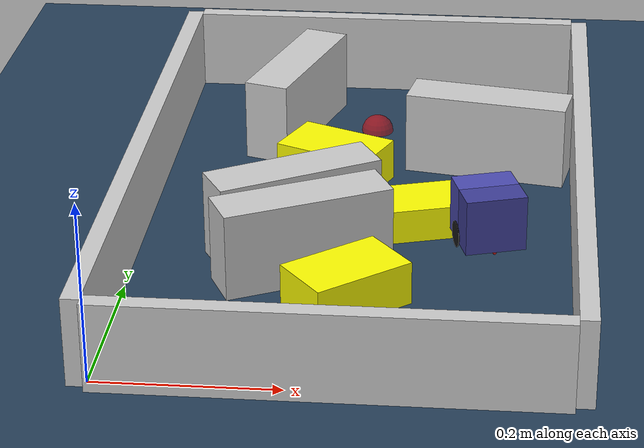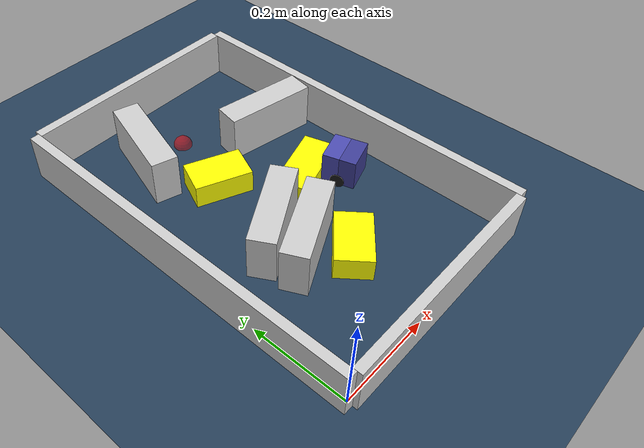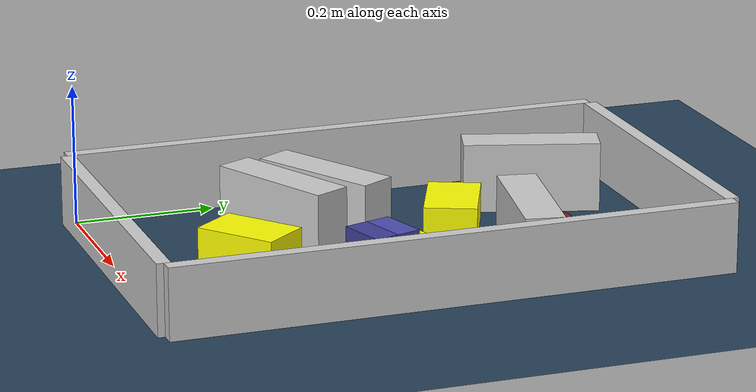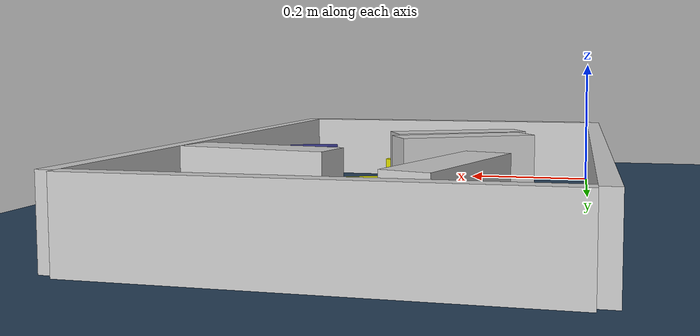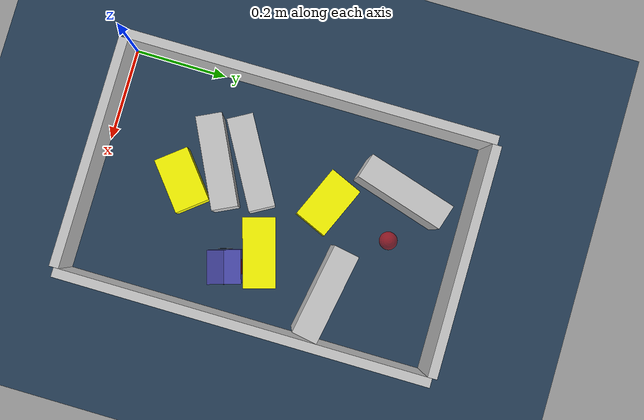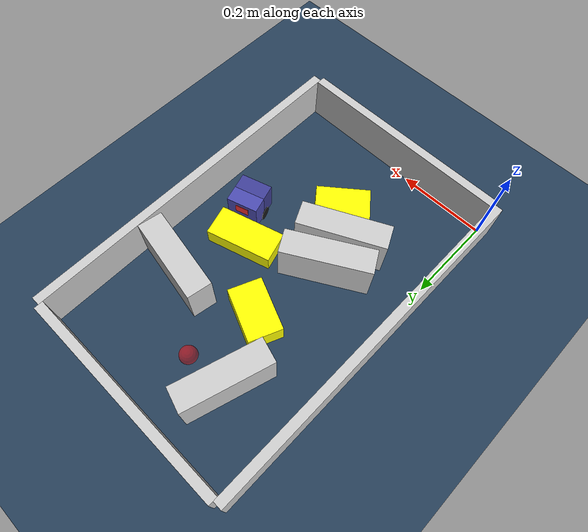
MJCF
<?xml version='1.0' encoding='utf-8'?>
<mujoco model="real_buildable">
  <compiler angle="degree" />
  <option timestep="0.002" integrator="implicitfast" iterations="100" cone="elliptic" />
  <default>
    <geom density="1" />
  </default>
  <asset>
    <texture builtin="gradient" height="3072" rgb1="0.3 0.5 0.7" rgb2="0 0 0" type="skybox" width="512" />
    <texture builtin="checker" height="300" mark="edge" markrgb="0.8 0.8 0.8" name="groundplane" rgb1="0.2 0.3 0.4" rgb2="0.1 0.2 0.3" type="2d" width="300" />
    <material name="groundplane" reflectance="0.2" texrepeat="5 5" texture="groundplane" texuniform="true" />
  </asset>
  <worldbody>
    <light dir="0 0 -1" directional="true" pos="0 0 1.5" />
    <geom name="floor" type="plane" condim="4" friction="0.5 0.005 0.001" material="groundplane" size="0 0 0.05" />
    <body name="walls">
      <geom name="wall_boundary_left" type="box" condim="4" friction="1.0 0.005 0.0001" rgba="0.8 0.8 0.8 1" pos="-0.010000 0.387500 0.050000" euler="0 0 0.000000" size="0.010000 0.397500 0.050000" />
      <geom name="wall_boundary_right" type="box" condim="4" friction="1.0 0.005 0.0001" rgba="0.8 0.8 0.8 1" pos="0.500000 0.387500 0.050000" euler="0 0 0.000000" size="0.010000 0.397500 0.050000" />
      <geom name="wall_boundary_bottom" type="box" condim="4" friction="1.0 0.005 0.0001" rgba="0.8 0.8 0.8 1" pos="0.245000 -0.010000 0.050000" euler="0 0 0.000000" size="0.245000 0.010000 0.050000" />
      <geom name="wall_boundary_top" type="box" condim="4" friction="1.0 0.005 0.0001" rgba="0.8 0.8 0.8 1" pos="0.245000 0.785000 0.050000" euler="0 0 0.000000" size="0.245000 0.010000 0.050000" />
      <geom name="wall_inner_1" type="box" condim="4" friction="1.0 0.005 0.0001" rgba="0.8 0.8 0.8 1" pos="0.173731 0.312636 0.050000" euler="0 0 29.699856" size="0.097500 0.027500 0.050000" />
      <geom name="wall_inner_2" type="box" condim="4" friction="1.0 0.005 0.0001" rgba="0.8 0.8 0.8 1" pos="0.191252 0.245062 0.050000" euler="0 0 26.107387" size="0.097500 0.027500 0.050000" />
      <geom name="wall_inner_3" type="box" condim="4" friction="1.0 0.005 0.0001" rgba="0.8 0.8 0.8 1" pos="0.389000 0.533000 0.050000" euler="0 0 169.800000" size="0.097500 0.027500 0.050000" />
      <geom name="wall_inner_4" type="box" condim="4" friction="1.0 0.005 0.0001" rgba="0.8 0.8 0.8 1" pos="0.143000 0.632000 0.050000" euler="0 0 73.000000" size="0.097500 0.027500 0.050000" />
    </body>
    <body name="car" pos="0.39443024111427882 0.31882349425159318 0.01" quat="0.59446112914259841 0 0 0.80412434731110272">
      <freejoint name="car_freejoint" />
      <inertial pos="0 0 0.0375" mass="0.35" diaginertia="0.000266 0.000266 0.000286" />
      <geom name="front_chassis_collision" type="box" pos="0.0175 0 0.0375" size="0.0175 0.035 0.0325" rgba="0.3 0.3 0.7 1" />
      <geom name="rear_chassis_collision" type="box" pos="-0.0175 0 0.0375" size="0.0175 0.035 0.0325" rgba="0.25 0.25 0.6 1" />
      <geom name="front_marker" type="box" pos="0.034 0 0.0505" size="0.002 0.015 0.01" rgba="1 0.2 0.2 1" contype="0" conaffinity="0" />
      <body name="rear_support_body" pos="-0.03 0 0.0025">
        <joint name="rear_caster_joint" type="ball" damping="0.0001" />
        <inertial pos="0 0 0" mass="0.025" diaginertia="0.000001 0.000001 0.000001" />
        <geom name="rear_support" type="sphere" pos="0 0 0" size="0.0025" friction="0 0 0" rgba="0.7 0.1 0.1 1" />
      </body>
      <body name="front_support_body" pos="0.03 0 0.0025">
        <joint name="front_caster_joint" type="ball" damping="0.0001" />
        <inertial pos="0 0 0" mass="0.025" diaginertia="0.000001 0.000001 0.000001" />
        <geom name="front_support" type="sphere" pos="0 0 0" size="0.0025" friction="0 0 0" rgba="0.1 0.7 0.1 1" />
      </body>
      <body name="left_wheel" pos="0 0.0375 0.015">
        <inertial pos="0 0 0" mass="0.05" diaginertia="0.000003 0.000006 0.000003" />
        <joint name="left_wheel_joint" type="hinge" axis="0 1 0" damping="0.01" armature="0.0001" />
        <geom name="left_wheel_collision" type="cylinder" size="0.015 0.0005" euler="90 0 0" rgba="0.1 0.1 0.1 1" />
      </body>
      <body name="right_wheel" pos="0 -0.0375 0.015">
        <inertial pos="0 0 0" mass="0.05" diaginertia="0.000003 0.000006 0.000003" />
        <joint name="right_wheel_joint" type="hinge" axis="0 1 0" damping="0.01" armature="0.0001" />
        <geom name="right_wheel_collision" type="cylinder" size="0.015 0.0005" euler="90 0 0" rgba="0.1 0.1 0.1 1" />
      </body>
    </body>
    <body name="obstacle_0_movable">
      <geom name="obstacle_0_movable" condim="4" pos="0.34740490073495545 0.37948901523392575 0.02" friction="1 0.005 0.0001" rgba="1 1 0 1" size="0.035000 0.075000 0.020000" type="box" mass="0.1" quat="0.59844736714468327 0 0 0.80116212389103658" />
      <joint type="free" />
    </body>
    <body name="obstacle_1_movable">
      <geom name="obstacle_1_movable" condim="4" pos="0.20499999999999943 0.48999999999999849 0.025000000000000001" friction="1 0.005 0.0001" rgba="1 1 0 1" size="0.037500 0.060000 0.025000" type="box" mass="0.1" quat="0.83628615584775956 0 0 0.54829322951991377" />
      <joint type="free" />
    </body>
    <body name="obstacle_2_movable">
      <geom name="obstacle_2_movable" condim="4" pos="0.2459289999999999 0.17987399999999981 0.025000000000000001" friction="1 0.005 0.0001" rgba="1 1 0 1" size="0.037500 0.060000 0.025000" type="box" mass="0.1" quat="0.43287451672267835 0 0 0.90145418783879838" />
      <joint type="free" />
    </body>
    <site name="goal" type="sphere" pos="0.245000 0.640000 0.0" size="0.02" rgba="1 0 0 0.5" />
  </worldbody>
  <actuator>
    <velocity name="left_wheel_drive" joint="left_wheel_joint" ctrlrange="-25 25" kv="0.75" forcerange="-0.5 0.5" />
    <velocity name="right_wheel_drive" joint="right_wheel_joint" ctrlrange="-25 25" kv="0.75" forcerange="-0.5 0.5" />
  </actuator>
</mujoco>
